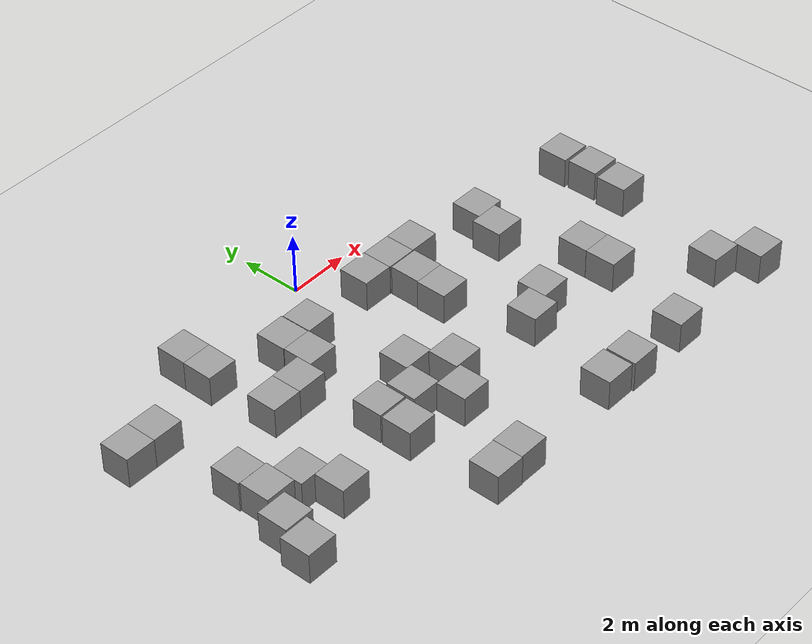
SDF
<sdf version="1.7">
 <world name="default">
  <model name="ground_plane">
   <static>1</static>
   <link name="link">
    <collision name="collision">
     <geometry><plane><normal>0 0 1</normal><size>100 100</size></plane></geometry>
     <surface>
      <contact><collide_bitmask>65535</collide_bitmask></contact>
      <friction><ode><mu>100</mu><mu2>50</mu2></ode></friction>
     </surface>
    </collision>
    <visual name="visual">
     <cast_shadows>0</cast_shadows>
     <geometry><plane><normal>0 0 1</normal><size>100 100</size></plane></geometry>
     <material>
      <script><uri>file://media/materials/scripts/gazebo.material</uri><name>Gazebo/Grey</name></script>
     </material>
    </visual>
   </link>
  </model>
  <model name="unit_box_10">
   <pose>-4.56044 -0.118109 0.5 -0 -0 -4.5e-05</pose>
   <link name="link">
    <inertial>
     <mass>1</mass>
     <inertia>
      <ixx>0.166667</ixx>
      <ixy>0</ixy>
      <ixz>0</ixz>
      <iyy>0.166667</iyy>
      <iyz>0</iyz>
      <izz>0.166667</izz>
     </inertia>
    </inertial>
    <collision name="collision"><geometry><box><size>1 1 1</size></box></geometry></collision>
    <visual name="visual">
     <geometry><box><size>1 1 1</size></box></geometry>
     <material>
      <script><name>Gazebo/Grey</name><uri>file://media/materials/scripts/gazebo.material</uri></script>
     </material>
    </visual>
   </link>
  </model>
  <model name="unit_box_11">
   <pose>-4.56221 -1.11811 0.499995 -1e-05 -0 -4.5e-05</pose>
   <link name="link">
    <inertial>
     <mass>1</mass>
     <inertia>
      <ixx>0.166667</ixx>
      <ixy>0</ixy>
      <ixz>0</ixz>
      <iyy>0.166667</iyy>
      <iyz>0</iyz>
      <izz>0.166667</izz>
     </inertia>
    </inertial>
    <collision name="collision"><geometry><box><size>1 1 1</size></box></geometry></collision>
    <visual name="visual">
     <geometry><box><size>1 1 1</size></box></geometry>
     <material>
      <script><name>Gazebo/Grey</name><uri>file://media/materials/scripts/gazebo.material</uri></script>
     </material>
    </visual>
   </link>
  </model>
  <model name="unit_box_12">
   <pose>-1.36292 -1.82264 0.5 0 -0 0.017426</pose>
   <link name="link">
    <inertial>
     <mass>1</mass>
     <inertia>
      <ixx>0.166667</ixx>
      <ixy>0</ixy>
      <ixz>0</ixz>
      <iyy>0.166667</iyy>
      <iyz>0</iyz>
      <izz>0.166667</izz>
     </inertia>
    </inertial>
    <collision name="collision"><geometry><box><size>1 1 1</size></box></geometry></collision>
    <visual name="visual">
     <geometry><box><size>1 1 1</size></box></geometry>
     <material>
      <script><name>Gazebo/Grey</name><uri>file://media/materials/scripts/gazebo.material</uri></script>
     </material>
    </visual>
   </link>
  </model>
  <model name="unit_box_13">
   <pose>-2.37914 -1.80052 0.5 0 -0 0.011643</pose>
   <link name="link">
    <inertial>
     <mass>1</mass>
     <inertia>
      <ixx>0.166667</ixx>
      <ixy>0</ixy>
      <ixz>0</ixz>
      <iyy>0.166667</iyy>
      <iyz>0</iyz>
      <izz>0.166667</izz>
     </inertia>
    </inertial>
    <collision name="collision"><geometry><box><size>1 1 1</size></box></geometry></collision>
    <visual name="visual">
     <geometry><box><size>1 1 1</size></box></geometry>
     <material>
      <script><name>Gazebo/Grey</name><uri>file://media/materials/scripts/gazebo.material</uri></script>
     </material>
    </visual>
   </link>
  </model>
  <model name="unit_box_14">
   <pose>-2.3489 -2.80037 0.5 0 -0 0.011743</pose>
   <link name="link">
    <inertial>
     <mass>1</mass>
     <inertia>
      <ixx>0.166667</ixx>
      <ixy>0</ixy>
      <ixz>0</ixz>
      <iyy>0.166667</iyy>
      <iyz>0</iyz>
      <izz>0.166667</izz>
     </inertia>
    </inertial>
    <collision name="collision"><geometry><box><size>1 1 1</size></box></geometry></collision>
    <visual name="visual">
     <geometry><box><size>1 1 1</size></box></geometry>
     <material>
      <script><name>Gazebo/Grey</name><uri>file://media/materials/scripts/gazebo.material</uri></script>
     </material>
    </visual>
   </link>
  </model>
  <model name="unit_box_15">
   <pose>-3.34321 -3.32191 0.5 0 -0 0.011227</pose>
   <link name="link">
    <inertial>
     <mass>1</mass>
     <inertia>
      <ixx>0.166667</ixx>
      <ixy>0</ixy>
      <ixz>0</ixz>
      <iyy>0.166667</iyy>
      <iyz>0</iyz>
      <izz>0.166667</izz>
     </inertia>
    </inertial>
    <collision name="collision"><geometry><box><size>1 1 1</size></box></geometry></collision>
    <visual name="visual">
     <geometry><box><size>1 1 1</size></box></geometry>
     <material>
      <script><name>Gazebo/Grey</name><uri>file://media/materials/scripts/gazebo.material</uri></script>
     </material>
    </visual>
   </link>
  </model>
  <model name="unit_box_16">
   <pose>-4.34315 -3.33523 0.5 0 -0 0.011186</pose>
   <link name="link">
    <inertial>
     <mass>1</mass>
     <inertia>
      <ixx>0.166667</ixx>
      <ixy>0</ixy>
      <ixz>0</ixz>
      <iyy>0.166667</iyy>
      <iyz>0</iyz>
      <izz>0.166667</izz>
     </inertia>
    </inertial>
    <collision name="collision"><geometry><box><size>1 1 1</size></box></geometry></collision>
    <visual name="visual">
     <geometry><box><size>1 1 1</size></box></geometry>
     <material>
      <script><name>Gazebo/Grey</name><uri>file://media/materials/scripts/gazebo.material</uri></script>
     </material>
    </visual>
   </link>
  </model>
  <model name="unit_box_28">
   <pose>1.18531 -1.66389 0.5 0 0 -4e-05</pose>
   <link name="link">
    <inertial>
     <mass>1</mass>
     <inertia>
      <ixx>0.166667</ixx>
      <ixy>0</ixy>
      <ixz>0</ixz>
      <iyy>0.166667</iyy>
      <iyz>0</iyz>
      <izz>0.166667</izz>
     </inertia>
    </inertial>
    <collision name="collision"><geometry><box><size>1 1 1</size></box></geometry></collision>
    <visual name="visual">
     <geometry><box><size>1 1 1</size></box></geometry>
     <material>
      <script><name>Gazebo/Grey</name><uri>file://media/materials/scripts/gazebo.material</uri></script>
     </material>
    </visual>
   </link>
  </model>
  <model name="unit_box_29">
   <pose>2.18532 -1.67054 0.5 -0 -0 -4.2e-05</pose>
   <link name="link">
    <inertial>
     <mass>1</mass>
     <inertia>
      <ixx>0.166667</ixx>
      <ixy>0</ixy>
      <ixz>0</ixz>
      <iyy>0.166667</iyy>
      <iyz>0</iyz>
      <izz>0.166667</izz>
     </inertia>
    </inertial>
    <collision name="collision"><geometry><box><size>1 1 1</size></box></geometry></collision>
    <visual name="visual">
     <geometry><box><size>1 1 1</size></box></geometry>
     <material>
      <script><name>Gazebo/Grey</name><uri>file://media/materials/scripts/gazebo.material</uri></script>
     </material>
    </visual>
   </link>
  </model>
  <model name="unit_box_30">
   <pose>3.18533 -1.66498 0.5 0 0 -4.5e-05</pose>
   <link name="link">
    <inertial>
     <mass>1</mass>
     <inertia>
      <ixx>0.166667</ixx>
      <ixy>0</ixy>
      <ixz>0</ixz>
      <iyy>0.166667</iyy>
      <iyz>0</iyz>
      <izz>0.166667</izz>
     </inertia>
    </inertial>
    <collision name="collision"><geometry><box><size>1 1 1</size></box></geometry></collision>
    <visual name="visual">
     <geometry><box><size>1 1 1</size></box></geometry>
     <material>
      <script><name>Gazebo/Grey</name><uri>file://media/materials/scripts/gazebo.material</uri></script>
     </material>
    </visual>
   </link>
  </model>
  <model name="unit_box_41">
   <pose>5.61097 -2.10776 0.5 0 -0 0</pose>
   <link name="link">
    <inertial>
     <mass>1</mass>
     <inertia>
      <ixx>0.166667</ixx>
      <ixy>0</ixy>
      <ixz>0</ixz>
      <iyy>0.166667</iyy>
      <iyz>0</iyz>
      <izz>0.166667</izz>
     </inertia>
    </inertial>
    <collision name="collision"><geometry><box><size>1 1 1</size></box></geometry></collision>
    <visual name="visual">
     <geometry><box><size>1 1 1</size></box></geometry>
     <material>
      <script><name>Gazebo/Grey</name><uri>file://media/materials/scripts/gazebo.material</uri></script>
     </material>
    </visual>
   </link>
  </model>
  <model name="unit_box_42">
   <pose>2.21423 -2.70049 0.499995 -0 1e-05 -0.000665</pose>
   <link name="link">
    <inertial>
     <mass>1</mass>
     <inertia>
      <ixx>0.166667</ixx>
      <ixy>0</ixy>
      <ixz>0</ixz>
      <iyy>0.166667</iyy>
      <iyz>0</iyz>
      <izz>0.166667</izz>
     </inertia>
    </inertial>
    <collision name="collision"><geometry><box><size>1 1 1</size></box></geometry></collision>
    <visual name="visual">
     <geometry><box><size>1 1 1</size></box></geometry>
     <material>
      <script><name>Gazebo/Grey</name><uri>file://media/materials/scripts/gazebo.material</uri></script>
     </material>
    </visual>
   </link>
  </model>
  <model name="unit_box_43">
   <pose>2.19002 -3.70047 0.5 -0 -0 -0.000667</pose>
   <link name="link">
    <inertial>
     <mass>1</mass>
     <inertia>
      <ixx>0.166667</ixx>
      <ixy>0</ixy>
      <ixz>0</ixz>
      <iyy>0.166667</iyy>
      <iyz>0</iyz>
      <izz>0.166667</izz>
     </inertia>
    </inertial>
    <collision name="collision"><geometry><box><size>1 1 1</size></box></geometry></collision>
    <visual name="visual">
     <geometry><box><size>1 1 1</size></box></geometry>
     <material>
      <script><name>Gazebo/Grey</name><uri>file://media/materials/scripts/gazebo.material</uri></script>
     </material>
    </visual>
   </link>
  </model>
  <model name="unit_box_44">
   <pose>5.33432 -3.10796 0.5 0 -0 0</pose>
   <link name="link">
    <inertial>
     <mass>1</mass>
     <inertia>
      <ixx>0.166667</ixx>
      <ixy>0</ixy>
      <ixz>0</ixz>
      <iyy>0.166667</iyy>
      <iyz>0</iyz>
      <izz>0.166667</izz>
     </inertia>
    </inertial>
    <collision name="collision"><geometry><box><size>1 1 1</size></box></geometry></collision>
    <visual name="visual">
     <geometry><box><size>1 1 1</size></box></geometry>
     <material>
      <script><name>Gazebo/Grey</name><uri>file://media/materials/scripts/gazebo.material</uri></script>
     </material>
    </visual>
   </link>
  </model>
  <model name="unit_box_46">
   <pose>4.06905 -5.84666 0.5 0 -0 0.01862</pose>
   <link name="link">
    <inertial>
     <mass>1</mass>
     <inertia>
      <ixx>0.166667</ixx>
      <ixy>0</ixy>
      <ixz>0</ixz>
      <iyy>0.166667</iyy>
      <iyz>0</iyz>
      <izz>0.166667</izz>
     </inertia>
    </inertial>
    <collision name="collision"><geometry><box><size>1 1 1</size></box></geometry></collision>
    <visual name="visual">
     <geometry><box><size>1 1 1</size></box></geometry>
     <material>
      <script><name>Gazebo/Grey</name><uri>file://media/materials/scripts/gazebo.material</uri></script>
     </material>
    </visual>
   </link>
  </model>
  <model name="unit_box_48">
   <pose>6.39464 -5.48191 0.5 0 -0 4.2e-05</pose>
   <link name="link">
    <inertial>
     <mass>1</mass>
     <inertia>
      <ixx>0.166667</ixx>
      <ixy>0</ixy>
      <ixz>0</ixz>
      <iyy>0.166667</iyy>
      <iyz>0</iyz>
      <izz>0.166667</izz>
     </inertia>
    </inertial>
    <collision name="collision"><geometry><box><size>1 1 1</size></box></geometry></collision>
    <visual name="visual">
     <geometry><box><size>1 1 1</size></box></geometry>
     <material>
      <script><name>Gazebo/Grey</name><uri>file://media/materials/scripts/gazebo.material</uri></script>
     </material>
    </visual>
   </link>
  </model>
  <model name="unit_box_49">
   <pose>6.39766 -6.48193 0.5 0 -0 4.2e-05</pose>
   <link name="link">
    <inertial>
     <mass>1</mass>
     <inertia>
      <ixx>0.166667</ixx>
      <ixy>0</ixy>
      <ixz>0</ixz>
      <iyy>0.166667</iyy>
      <iyz>0</iyz>
      <izz>0.166667</izz>
     </inertia>
    </inertial>
    <collision name="collision"><geometry><box><size>1 1 1</size></box></geometry></collision>
    <visual name="visual">
     <geometry><box><size>1 1 1</size></box></geometry>
     <material>
      <script><name>Gazebo/Grey</name><uri>file://media/materials/scripts/gazebo.material</uri></script>
     </material>
    </visual>
   </link>
  </model>
  <model name="unit_box_50">
   <pose>-0.750721 -4.89902 0.5 0 0 -0.002032</pose>
   <link name="link">
    <inertial>
     <mass>1</mass>
     <inertia>
      <ixx>0.166667</ixx>
      <ixy>0</ixy>
      <ixz>0</ixz>
      <iyy>0.166667</iyy>
      <iyz>0</iyz>
      <izz>0.166667</izz>
     </inertia>
    </inertial>
    <collision name="collision"><geometry><box><size>1 1 1</size></box></geometry></collision>
    <visual name="visual">
     <geometry><box><size>1 1 1</size></box></geometry>
     <material>
      <script><name>Gazebo/Grey</name><uri>file://media/materials/scripts/gazebo.material</uri></script>
     </material>
    </visual>
   </link>
  </model>
  <model name="unit_box_51">
   <pose>-1.57242 -5.89703 0.5 0 0 -0.00912</pose>
   <link name="link">
    <inertial>
     <mass>1</mass>
     <inertia>
      <ixx>0.166667</ixx>
      <ixy>0</ixy>
      <ixz>0</ixz>
      <iyy>0.166667</iyy>
      <iyz>0</iyz>
      <izz>0.166667</izz>
     </inertia>
    </inertial>
    <collision name="collision"><geometry><box><size>1 1 1</size></box></geometry></collision>
    <visual name="visual">
     <geometry><box><size>1 1 1</size></box></geometry>
     <material>
      <script><name>Gazebo/Grey</name><uri>file://media/materials/scripts/gazebo.material</uri></script>
     </material>
    </visual>
   </link>
  </model>
  <model name="unit_box_52">
   <pose>0.168914 -5.89799 0.5 0 -0 0.004944</pose>
   <link name="link">
    <inertial>
     <mass>1</mass>
     <inertia>
      <ixx>0.166667</ixx>
      <ixy>0</ixy>
      <ixz>0</ixz>
      <iyy>0.166667</iyy>
      <iyz>0</iyz>
      <izz>0.166667</izz>
     </inertia>
    </inertial>
    <collision name="collision"><geometry><box><size>1 1 1</size></box></geometry></collision>
    <visual name="visual">
     <geometry><box><size>1 1 1</size></box></geometry>
     <material>
      <script><name>Gazebo/Grey</name><uri>file://media/materials/scripts/gazebo.material</uri></script>
     </material>
    </visual>
   </link>
  </model>
  <model name="unit_box_53">
   <pose>-0.691629 -6.92124 0.5 0 -0 0</pose>
   <link name="link">
    <inertial>
     <mass>1</mass>
     <inertia>
      <ixx>0.166667</ixx>
      <ixy>0</ixy>
      <ixz>0</ixz>
      <iyy>0.166667</iyy>
      <iyz>0</iyz>
      <izz>0.166667</izz>
     </inertia>
    </inertial>
    <collision name="collision"><geometry><box><size>1 1 1</size></box></geometry></collision>
    <visual name="visual">
     <geometry><box><size>1 1 1</size></box></geometry>
     <material>
      <script><name>Gazebo/Grey</name><uri>file://media/materials/scripts/gazebo.material</uri></script>
     </material>
    </visual>
   </link>
  </model>
  <model name="unit_box_54">
   <pose>-2.64399 -5.63101 0.5 0 -0 0</pose>
   <link name="link">
    <inertial>
     <mass>1</mass>
     <inertia>
      <ixx>0.166667</ixx>
      <ixy>0</ixy>
      <ixz>0</ixz>
      <iyy>0.166667</iyy>
      <iyz>0</iyz>
      <izz>0.166667</izz>
     </inertia>
    </inertial>
    <collision name="collision"><geometry><box><size>1 1 1</size></box></geometry></collision>
    <visual name="visual">
     <geometry><box><size>1 1 1</size></box></geometry>
     <material>
      <script><name>Gazebo/Grey</name><uri>file://media/materials/scripts/gazebo.material</uri></script>
     </material>
    </visual>
   </link>
  </model>
  <model name="unit_box_55">
   <pose>-2.65881 -6.69352 0.5 0 -0 0</pose>
   <link name="link">
    <inertial>
     <mass>1</mass>
     <inertia>
      <ixx>0.166667</ixx>
      <ixy>0</ixy>
      <ixz>0</ixz>
      <iyy>0.166667</iyy>
      <iyz>0</iyz>
      <izz>0.166667</izz>
     </inertia>
    </inertial>
    <collision name="collision"><geometry><box><size>1 1 1</size></box></geometry></collision>
    <visual name="visual">
     <geometry><box><size>1 1 1</size></box></geometry>
     <material>
      <script><name>Gazebo/Grey</name><uri>file://media/materials/scripts/gazebo.material</uri></script>
     </material>
    </visual>
   </link>
  </model>
  <model name="unit_box_58">
   <pose>-7.23028 -1.72404 0.5 0 -0 1.9e-05</pose>
   <link name="link">
    <inertial>
     <mass>1</mass>
     <inertia>
      <ixx>0.166667</ixx>
      <ixy>0</ixy>
      <ixz>0</ixz>
      <iyy>0.166667</iyy>
      <iyz>0</iyz>
      <izz>0.166667</izz>
     </inertia>
    </inertial>
    <collision name="collision"><geometry><box><size>1 1 1</size></box></geometry></collision>
    <visual name="visual">
     <geometry><box><size>1 1 1</size></box></geometry>
     <material>
      <script><name>Gazebo/Grey</name><uri>file://media/materials/scripts/gazebo.material</uri></script>
     </material>
    </visual>
   </link>
  </model>
  <model name="unit_box_59">
   <pose>-8.23028 -1.72518 0.5 0 -0 1.4e-05</pose>
   <link name="link">
    <inertial>
     <mass>1</mass>
     <inertia>
      <ixx>0.166667</ixx>
      <ixy>0</ixy>
      <ixz>0</ixz>
      <iyy>0.166667</iyy>
      <iyz>0</iyz>
      <izz>0.166667</izz>
     </inertia>
    </inertial>
    <collision name="collision"><geometry><box><size>1 1 1</size></box></geometry></collision>
    <visual name="visual">
     <geometry><box><size>1 1 1</size></box></geometry>
     <material>
      <script><name>Gazebo/Grey</name><uri>file://media/materials/scripts/gazebo.material</uri></script>
     </material>
    </visual>
   </link>
  </model>
  <model name="unit_box_60">
   <pose>-6.96782 -4.55924 0.5 0 0 -0.001206</pose>
   <link name="link">
    <inertial>
     <mass>1</mass>
     <inertia>
      <ixx>0.166667</ixx>
      <ixy>0</ixy>
      <ixz>0</ixz>
      <iyy>0.166667</iyy>
      <iyz>0</iyz>
      <izz>0.166667</izz>
     </inertia>
    </inertial>
    <collision name="collision"><geometry><box><size>1 1 1</size></box></geometry></collision>
    <visual name="visual">
     <geometry><box><size>1 1 1</size></box></geometry>
     <material>
      <script><name>Gazebo/Grey</name><uri>file://media/materials/scripts/gazebo.material</uri></script>
     </material>
    </visual>
   </link>
  </model>
  <model name="unit_box_61">
   <pose>-6.91836 -5.56051 0.5 0 -0 0.001478</pose>
   <link name="link">
    <inertial>
     <mass>1</mass>
     <inertia>
      <ixx>0.166667</ixx>
      <ixy>0</ixy>
      <ixz>0</ixz>
      <iyy>0.166667</iyy>
      <iyz>0</iyz>
      <izz>0.166667</izz>
     </inertia>
    </inertial>
    <collision name="collision"><geometry><box><size>1 1 1</size></box></geometry></collision>
    <visual name="visual">
     <geometry><box><size>1 1 1</size></box></geometry>
     <material>
      <script><name>Gazebo/Grey</name><uri>file://media/materials/scripts/gazebo.material</uri></script>
     </material>
    </visual>
   </link>
  </model>
  <model name="unit_box_62">
   <pose>-5.91664 -5.81077 0.5 0 -0 0.004167</pose>
   <link name="link">
    <inertial>
     <mass>1</mass>
     <inertia>
      <ixx>0.166667</ixx>
      <ixy>0</ixy>
      <ixz>0</ixz>
      <iyy>0.166667</iyy>
      <iyz>0</iyz>
      <izz>0.166667</izz>
     </inertia>
    </inertial>
    <collision name="collision"><geometry><box><size>1 1 1</size></box></geometry></collision>
    <visual name="visual">
     <geometry><box><size>1 1 1</size></box></geometry>
     <material>
      <script><name>Gazebo/Grey</name><uri>file://media/materials/scripts/gazebo.material</uri></script>
     </material>
    </visual>
   </link>
  </model>
  <model name="unit_box_63">
   <pose>-5.41266 -6.80869 0.5 0 -0 0.008743</pose>
   <link name="link">
    <inertial>
     <mass>1</mass>
     <inertia>
      <ixx>0.166667</ixx>
      <ixy>0</ixy>
      <ixz>0</ixz>
      <iyy>0.166667</iyy>
      <iyz>0</iyz>
      <izz>0.166667</izz>
     </inertia>
    </inertial>
    <collision name="collision"><geometry><box><size>1 1 1</size></box></geometry></collision>
    <visual name="visual">
     <geometry><box><size>1 1 1</size></box></geometry>
     <material>
      <script><name>Gazebo/Grey</name><uri>file://media/materials/scripts/gazebo.material</uri></script>
     </material>
    </visual>
   </link>
  </model>
  <model name="unit_box_47">
   <pose>3.07682 -6.27952 0.5 0 -0 0.018582</pose>
   <link name="link">
    <inertial>
     <mass>1</mass>
     <inertia>
      <ixx>0.166667</ixx>
      <ixy>0</ixy>
      <ixz>0</ixz>
      <iyy>0.166667</iyy>
      <iyz>0</iyz>
      <izz>0.166667</izz>
     </inertia>
    </inertial>
    <collision name="collision"><geometry><box><size>1 1 1</size></box></geometry></collision>
    <visual name="visual">
     <geometry><box><size>1 1 1</size></box></geometry>
     <material>
      <script><name>Gazebo/Grey</name><uri>file://media/materials/scripts/gazebo.material</uri></script>
     </material>
    </visual>
   </link>
  </model>
  <model name="unit_box_70">
   <pose>9.36956 -2.33866 0.5 0 -0 0</pose>
   <link name="link">
    <inertial>
     <mass>1</mass>
     <inertia>
      <ixx>0.166667</ixx>
      <ixy>0</ixy>
      <ixz>0</ixz>
      <iyy>0.166667</iyy>
      <iyz>0</iyz>
      <izz>0.166667</izz>
     </inertia>
    </inertial>
    <collision name="collision"><geometry><box><size>1 1 1</size></box></geometry></collision>
    <visual name="visual">
     <geometry><box><size>1 1 1</size></box></geometry>
     <material>
      <script><name>Gazebo/Grey</name><uri>file://media/materials/scripts/gazebo.material</uri></script>
     </material>
    </visual>
   </link>
  </model>
  <model name="unit_box_72">
   <pose>9.43465 -3.42984 0.5 0 -0 0</pose>
   <link name="link">
    <inertial>
     <mass>1</mass>
     <inertia>
      <ixx>0.166667</ixx>
      <ixy>0</ixy>
      <ixz>0</ixz>
      <iyy>0.166667</iyy>
      <iyz>0</iyz>
      <izz>0.166667</izz>
     </inertia>
    </inertial>
    <collision name="collision"><geometry><box><size>1 1 1</size></box></geometry></collision>
    <visual name="visual">
     <geometry><box><size>1 1 1</size></box></geometry>
     <material>
      <script><name>Gazebo/Grey</name><uri>file://media/materials/scripts/gazebo.material</uri></script>
     </material>
    </visual>
   </link>
  </model>
  <model name="unit_box_73">
   <pose>9.3498 -4.57193 0.5 0 -0 0</pose>
   <link name="link">
    <inertial>
     <mass>1</mass>
     <inertia>
      <ixx>0.166667</ixx>
      <ixy>0</ixy>
      <ixz>0</ixz>
      <iyy>0.166667</iyy>
      <iyz>0</iyz>
      <izz>0.166667</izz>
     </inertia>
    </inertial>
    <collision name="collision"><geometry><box><size>1 1 1</size></box></geometry></collision>
    <visual name="visual">
     <geometry><box><size>1 1 1</size></box></geometry>
     <material>
      <script><name>Gazebo/Grey</name><uri>file://media/materials/scripts/gazebo.material</uri></script>
     </material>
    </visual>
   </link>
  </model>
  <model name="unit_box_74">
   <pose>3.42395 -9.53693 0.5 0 -0 0</pose>
   <link name="link">
    <inertial>
     <mass>1</mass>
     <inertia>
      <ixx>0.166667</ixx>
      <ixy>0</ixy>
      <ixz>0</ixz>
      <iyy>0.166667</iyy>
      <iyz>0</iyz>
      <izz>0.166667</izz>
     </inertia>
    </inertial>
    <collision name="collision"><geometry><box><size>1 1 1</size></box></geometry></collision>
    <visual name="visual">
     <geometry><box><size>1 1 1</size></box></geometry>
     <material>
      <script><name>Gazebo/Grey</name><uri>file://media/materials/scripts/gazebo.material</uri></script>
     </material>
    </visual>
   </link>
  </model>
  <model name="unit_box_75">
   <pose>2.3655 -9.4826 0.5 0 -0 0</pose>
   <link name="link">
    <inertial>
     <mass>1</mass>
     <inertia>
      <ixx>0.166667</ixx>
      <ixy>0</ixy>
      <ixz>0</ixz>
      <iyy>0.166667</iyy>
      <iyz>0</iyz>
      <izz>0.166667</izz>
     </inertia>
    </inertial>
    <collision name="collision"><geometry><box><size>1 1 1</size></box></geometry></collision>
    <visual name="visual">
     <geometry><box><size>1 1 1</size></box></geometry>
     <material>
      <script><name>Gazebo/Grey</name><uri>file://media/materials/scripts/gazebo.material</uri></script>
     </material>
    </visual>
   </link>
  </model>
  <model name="unit_box_76">
   <pose>-1.40834 -9.50549 0.5 0 -0 0.000712</pose>
   <link name="link">
    <inertial>
     <mass>1</mass>
     <inertia>
      <ixx>0.166667</ixx>
      <ixy>0</ixy>
      <ixz>0</ixz>
      <iyy>0.166667</iyy>
      <iyz>0</iyz>
      <izz>0.166667</izz>
     </inertia>
    </inertial>
    <collision name="collision"><geometry><box><size>1 1 1</size></box></geometry></collision>
    <visual name="visual">
     <geometry><box><size>1 1 1</size></box></geometry>
     <material>
      <script><name>Gazebo/Grey</name><uri>file://media/materials/scripts/gazebo.material</uri></script>
     </material>
    </visual>
   </link>
  </model>
  <model name="unit_box_77">
   <pose>-2.40834 -9.52776 0.5 0 -0 0.000716</pose>
   <link name="link">
    <inertial>
     <mass>1</mass>
     <inertia>
      <ixx>0.166667</ixx>
      <ixy>0</ixy>
      <ixz>0</ixz>
      <iyy>0.166667</iyy>
      <iyz>0</iyz>
      <izz>0.166667</izz>
     </inertia>
    </inertial>
    <collision name="collision"><geometry><box><size>1 1 1</size></box></geometry></collision>
    <visual name="visual">
     <geometry><box><size>1 1 1</size></box></geometry>
     <material>
      <script><name>Gazebo/Grey</name><uri>file://media/materials/scripts/gazebo.material</uri></script>
     </material>
    </visual>
   </link>
  </model>
  <model name="unit_box_78">
   <pose>-7.38986 -6.66094 0.5 0 -0 0</pose>
   <link name="link">
    <inertial>
     <mass>1</mass>
     <inertia>
      <ixx>0.166667</ixx>
      <ixy>0</ixy>
      <ixz>0</ixz>
      <iyy>0.166667</iyy>
      <iyz>0</iyz>
      <izz>0.166667</izz>
     </inertia>
    </inertial>
    <collision name="collision"><geometry><box><size>1 1 1</size></box></geometry></collision>
    <visual name="visual">
     <geometry><box><size>1 1 1</size></box></geometry>
     <material>
      <script><name>Gazebo/Grey</name><uri>file://media/materials/scripts/gazebo.material</uri></script>
     </material>
    </visual>
   </link>
  </model>
  <model name="unit_box_79">
   <pose>-7.66904 -7.7112 0.5 0 -0 0</pose>
   <link name="link">
    <inertial>
     <mass>1</mass>
     <inertia>
      <ixx>0.166667</ixx>
      <ixy>0</ixy>
      <ixz>0</ixz>
      <iyy>0.166667</iyy>
      <iyz>0</iyz>
      <izz>0.166667</izz>
     </inertia>
    </inertial>
    <collision name="collision"><geometry><box><size>1 1 1</size></box></geometry></collision>
    <visual name="visual">
     <geometry><box><size>1 1 1</size></box></geometry>
     <material>
      <script><name>Gazebo/Grey</name><uri>file://media/materials/scripts/gazebo.material</uri></script>
     </material>
    </visual>
   </link>
  </model>
  <model name="unit_box_81">
   <pose>9.45768 -9.49074 0.5 0 0 -0.044803</pose>
   <link name="link">
    <inertial>
     <mass>1</mass>
     <inertia>
      <ixx>0.166667</ixx>
      <ixy>0</ixy>
      <ixz>0</ixz>
      <iyy>0.166667</iyy>
      <iyz>0</iyz>
      <izz>0.166667</izz>
     </inertia>
    </inertial>
    <collision name="collision"><geometry><box><size>1 1 1</size></box></geometry></collision>
    <visual name="visual">
     <geometry><box><size>1 1 1</size></box></geometry>
     <material>
      <script><name>Gazebo/Grey</name><uri>file://media/materials/scripts/gazebo.material</uri></script>
     </material>
    </visual>
   </link>
  </model>
  <model name="unit_box_82">
   <pose>8.49554 -8.60811 0.5 0 0 -0.045078</pose>
   <link name="link">
    <inertial>
     <mass>1</mass>
     <inertia>
      <ixx>0.166667</ixx>
      <ixy>0</ixy>
      <ixz>0</ixz>
      <iyy>0.166667</iyy>
      <iyz>0</iyz>
      <izz>0.166667</izz>
     </inertia>
    </inertial>
    <collision name="collision"><geometry><box><size>1 1 1</size></box></geometry></collision>
    <visual name="visual">
     <geometry><box><size>1 1 1</size></box></geometry>
     <material>
      <script><name>Gazebo/Grey</name><uri>file://media/materials/scripts/gazebo.material</uri></script>
     </material>
    </visual>
   </link>
  </model>
  <model name="unit_box_45">
   <pose>5.53531 -9.52538 0.5 -0 -0 -0</pose>
   <link name="link">
    <inertial>
     <mass>1</mass>
     <inertia>
      <ixx>0.166667</ixx>
      <ixy>0</ixy>
      <ixz>0</ixz>
      <iyy>0.166667</iyy>
      <iyz>0</iyz>
      <izz>0.166667</izz>
     </inertia>
    </inertial>
    <collision name="collision"><geometry><box><size>1 1 1</size></box></geometry></collision>
    <visual name="visual">
     <geometry><box><size>1 1 1</size></box></geometry>
     <material>
      <script><name>Gazebo/Grey</name><uri>file://media/materials/scripts/gazebo.material</uri></script>
     </material>
    </visual>
   </link>
  </model>
 </world>
</sdf>
